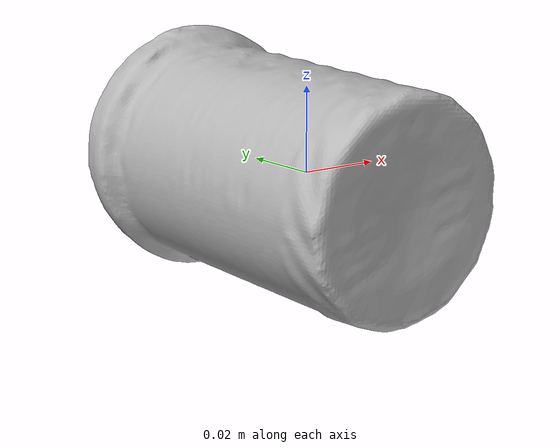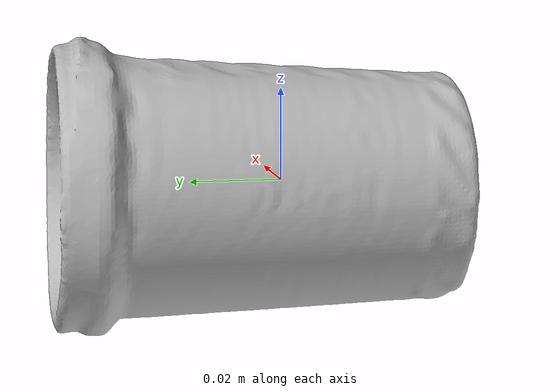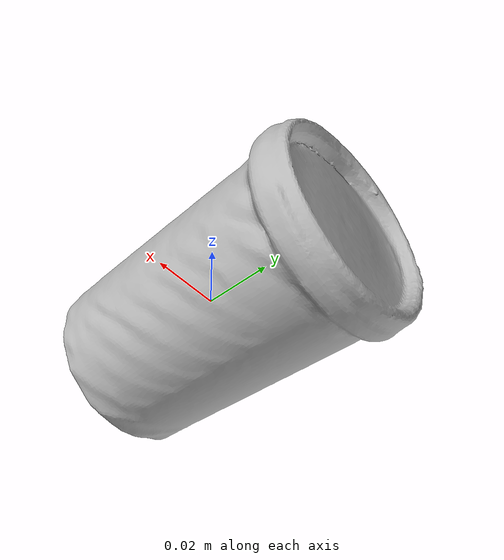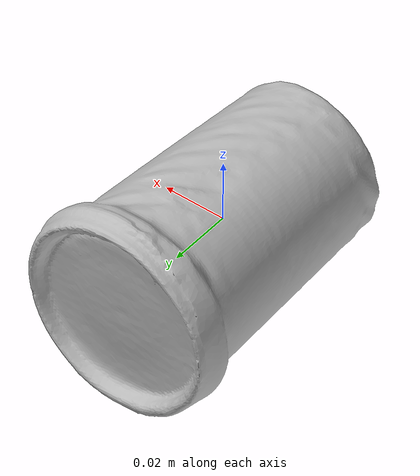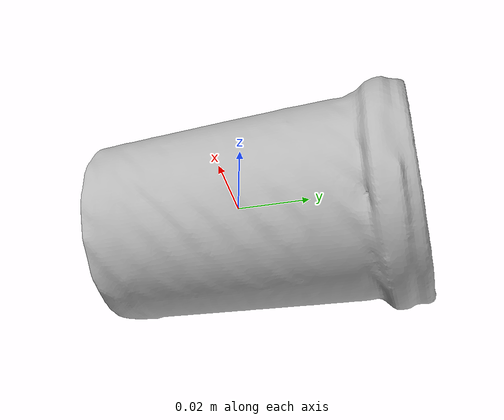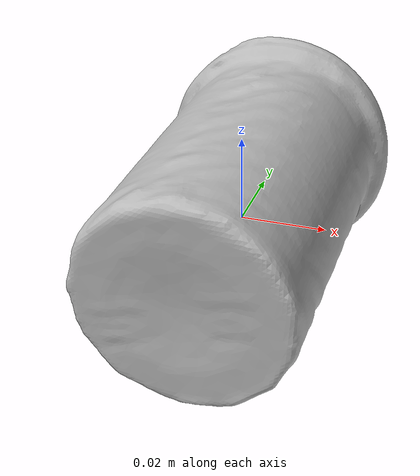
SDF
<?xml version='1.0'?>
<sdf version="1.4">
  <model name="BakingVanilla">
    <static>false</static>
    <link name="link">
      <inertial>
        <pose>-0.001873988104043468 0.009826097161533265 -0.0008291385698785596 1.5451356716660918 -0.25595380792618455 -3.1355385572208045</pose>
        <mass>0.021549503635175965</mass>
        <inertia>
          <ixx>1.744346538781682e-05</ixx>
          <ixy>6.186294607124011e-22</ixy>
          <ixz>1.5781518698538514e-21</ixz>
          <iyy>1.736317532868618e-05</iyy>
          <iyz>8.148404367819653e-21</iyz>
          <izz>8.710839281527282e-06</izz>
        </inertia>
      </inertial>
      <collision name="collision">
        <geometry>
          <mesh>
            <!-- Use a downsampled mesh for collisions -->
            <uri>model:///BakingVanilla/BakingVanilla_250_collision.obj</uri>
	        </mesh>
        </geometry>
        <surface>
      </surface>
      </collision>
      <visual name="visual">
        <geometry>
          <mesh>
            <uri>model:///BakingVanilla/BakingVanilla_25k_tex.obj</uri>
	        </mesh>
        </geometry>
        <material>
          <script>
            <uri>model:///BakingVanilla/BakingVanilla.material</uri>
            <name>BakingVanilla</name>
          </script>
        </material>
      </visual>
    </link>
  </model>
</sdf>
